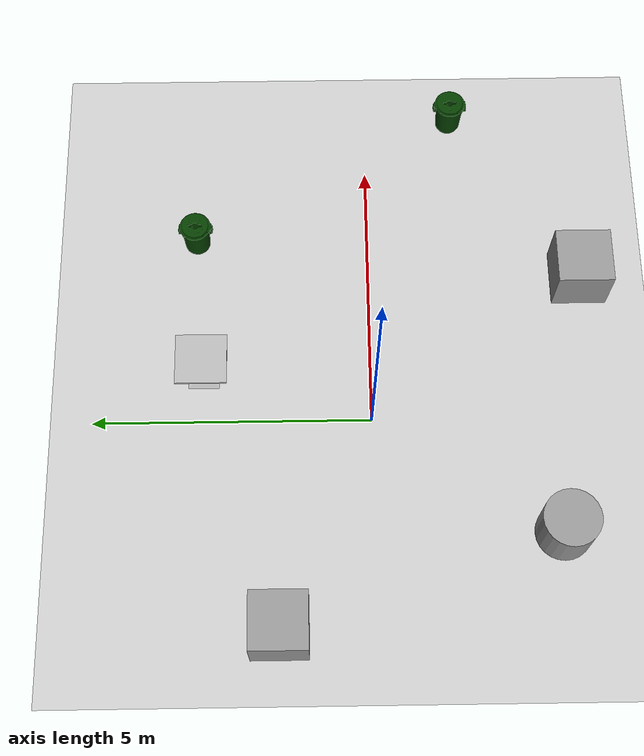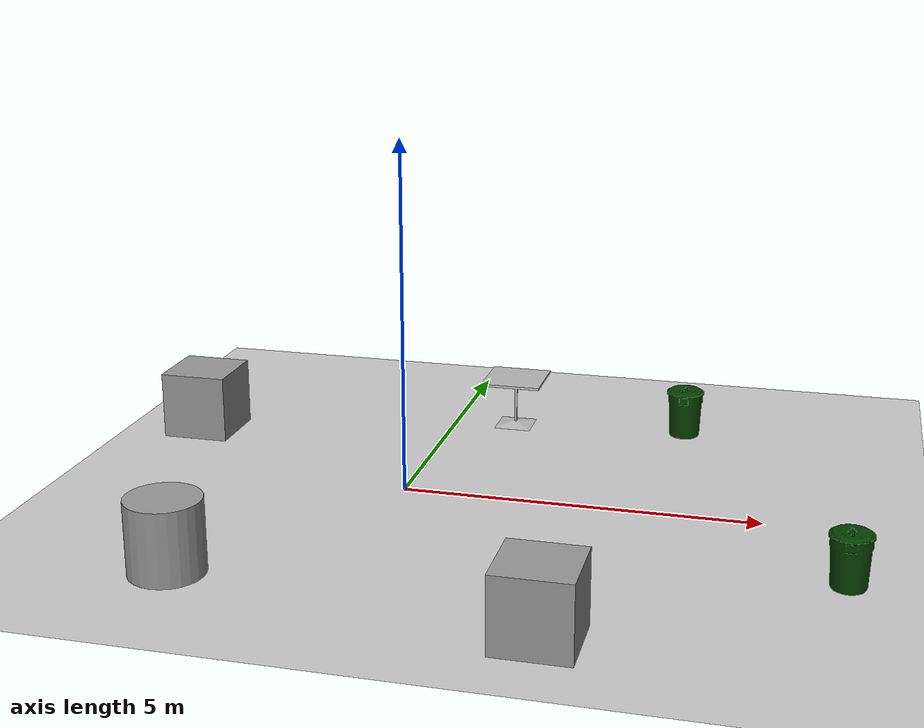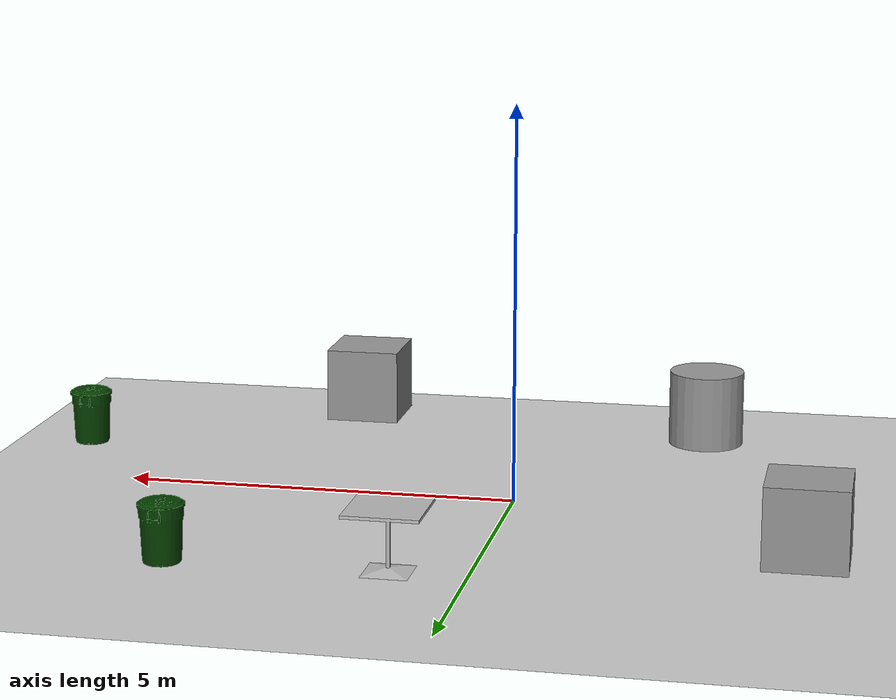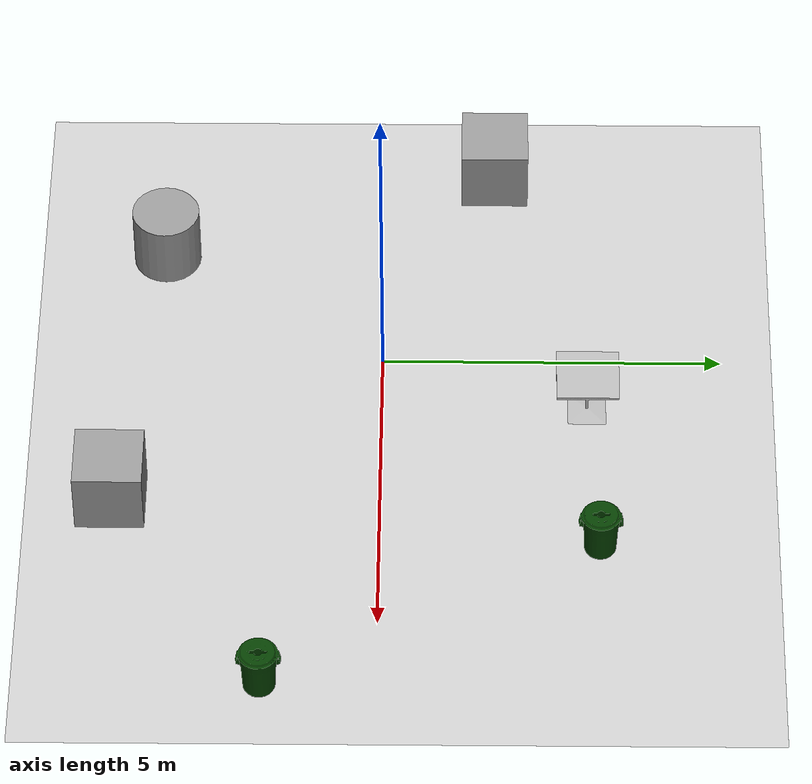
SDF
<sdf version="1.7">
 <world name="default">
  <light name="sun" type="directional">
   <pose>0 0 10 0 -0 0</pose>
   <diffuse>0.8 0.8 0.8 1</diffuse>
   <specular>0.2 0.2 0.2 1</specular>
   <attenuation>
    <range>1000</range>
    <constant>0.9</constant>
    <linear>0.01</linear>
    <quadratic>0.001</quadratic>
   </attenuation>
   <direction>-0.5 0.1 -0.9</direction>
   <spot><inner_angle>0</inner_angle><outer_angle>0</outer_angle><falloff>0</falloff></spot>
  </light>
  <model name="ground_plane">
   <static>1</static>
   <link name="link">
    <collision name="collision">
     <geometry><plane><normal>0 0 1</normal><size>100 100</size></plane></geometry>
     <surface>
      <contact><collide_bitmask>65535</collide_bitmask></contact>
      <friction><ode><mu>100</mu><mu2>50</mu2></ode></friction>
     </surface>
    </collision>
    <visual name="visual">
     <cast_shadows>0</cast_shadows>
     <geometry><plane><normal>0 0 1</normal><size>100 100</size></plane></geometry>
     <material>
      <script><uri>file://media/materials/scripts/gazebo.material</uri><name>Gazebo/Grey</name></script>
     </material>
    </visual>
   </link>
  </model>
  <gravity>0 0 -9.8</gravity>
  <magnetic_field>6e-06 2.3e-05 -4.2e-05</magnetic_field>
  <atmosphere type="adiabatic"/>
  <physics type="ode">
   <max_step_size>0.001</max_step_size>
   <real_time_factor>1</real_time_factor>
   <real_time_update_rate>1000</real_time_update_rate>
  </physics>
  <scene><ambient>0.4 0.4 0.4 1</ambient><background>0.7 0.7 0.7 1</background><shadows>1</shadows></scene>
  <spherical_coordinates>
   <surface_model>EARTH_WGS84</surface_model>
   <latitude_deg>0</latitude_deg>
   <longitude_deg>0</longitude_deg>
   <elevation>0</elevation>
   <heading_deg>0</heading_deg>
  </spherical_coordinates>
  <model name="cafe_table">
   <static>1</static>
   <link name="link">
    <collision name="surface">
     <pose>0 0 0.755 0 -0 0</pose>
     <geometry><box><size>0.913 0.913 0.04</size></box></geometry>
    </collision>
    <collision name="column">
     <pose>0 0 0.37 0 -0 0</pose>
     <geometry><box><size>0.042 0.042 0.74</size></box></geometry>
    </collision>
    <collision name="base">
     <pose>0 0 0.02 0 -0 0</pose>
     <geometry><box><size>0.56 0.56 0.04</size></box></geometry>
    </collision>
    <visual name="visual">
     <geometry><mesh><uri>model://cafe_table/meshes/cafe_table.dae</uri></mesh></geometry>
    </visual>
   </link>
   <pose>0.928571 3.01216 0 0 -0 0</pose>
  </model>
  <model name="unit_box">
   <pose>2.75431 -3.89171 0.499995 0 1e-05 0</pose>
   <link name="link">
    <inertial>
     <mass>1</mass>
     <inertia>
      <ixx>0.166667</ixx>
      <ixy>0</ixy>
      <ixz>0</ixz>
      <iyy>0.166667</iyy>
      <iyz>0</iyz>
      <izz>0.166667</izz>
     </inertia>
    </inertial>
    <collision name="collision"><geometry><box><size>1 1 1</size></box></geometry></collision>
    <visual name="visual">
     <geometry><box><size>1 1 1</size></box></geometry>
     <material>
      <script><name>Gazebo/Grey</name><uri>file://media/materials/scripts/gazebo.material</uri></script>
     </material>
    </visual>
   </link>
  </model>
  <model name="unit_box_0">
   <pose>-3.72752 1.64882 0.499995 -1e-05 -0 -0</pose>
   <link name="link">
    <inertial>
     <mass>1</mass>
     <inertia>
      <ixx>0.166667</ixx>
      <ixy>0</ixy>
      <ixz>0</ixz>
      <iyy>0.166667</iyy>
      <iyz>0</iyz>
      <izz>0.166667</izz>
     </inertia>
    </inertial>
    <collision name="collision"><geometry><box><size>1 1 1</size></box></geometry></collision>
    <visual name="visual">
     <geometry><box><size>1 1 1</size></box></geometry>
     <material>
      <script><name>Gazebo/Grey</name><uri>file://media/materials/scripts/gazebo.material</uri></script>
     </material>
    </visual>
   </link>
  </model>
  <model name="unit_cylinder">
   <pose>-2.09564 -3.27488 0.499992 -3e-06 4e-06 0</pose>
   <link name="link">
    <inertial>
     <mass>1</mass>
     <inertia><ixx>0.145833</ixx><ixy>0</ixy><ixz>0</ixz><iyy>0.145833</iyy><iyz>0</iyz><izz>0.125</izz></inertia>
    </inertial>
    <collision name="collision">
     <geometry><cylinder><radius>0.5</radius><length>1</length></cylinder></geometry>
    </collision>
    <visual name="visual">
     <geometry><cylinder><radius>0.5</radius><length>1</length></cylinder></geometry>
     <material>
      <script><name>Gazebo/Grey</name><uri>file://media/materials/scripts/gazebo.material</uri></script>
     </material>
    </visual>
   </link>
  </model>
  <model name="first_2015_trash_can">
   <link name="link">
    <inertial>
     <pose>0 0 0.3683 0 -0 0</pose>
     <mass>4.83076</mass>
     <inertia>
      <ixx>0.281534</ixx>
      <ixy>0</ixy>
      <ixz>0</ixz>
      <iyy>0.281534</iyy>
      <iyz>0</iyz>
      <izz>0.126223</izz>
     </inertia>
    </inertial>
    <visual name="visual">
     <geometry><mesh><uri>model://first_2015_trash_can/meshes/trash_can.dae</uri></mesh></geometry>
    </visual>
    <collision name="collision">
     <geometry><mesh><uri>model://first_2015_trash_can/meshes/trash_can.dae</uri></mesh></geometry>
    </collision>
   </link>
   <pose>3.57565 3.17756 -2e-06 -5e-06 1.1e-05 -0.000468</pose>
  </model>
  <model name="first_2015_trash_can_0">
   <link name="link">
    <inertial>
     <pose>0 0 0.3683 0 -0 0</pose>
     <mass>4.83076</mass>
     <inertia>
      <ixx>0.281534</ixx>
      <ixy>0</ixy>
      <ixz>0</ixz>
      <iyy>0.281534</iyy>
      <iyz>0</iyz>
      <izz>0.126223</izz>
     </inertia>
    </inertial>
    <visual name="visual">
     <geometry><mesh><uri>model://first_2015_trash_can/meshes/trash_can.dae</uri></mesh></geometry>
    </visual>
    <collision name="collision">
     <geometry><mesh><uri>model://first_2015_trash_can/meshes/trash_can.dae</uri></mesh></geometry>
    </collision>
   </link>
   <pose>6.13875 -1.64032 -2e-06 -1.4e-05 1e-05 -9e-05</pose>
  </model>
 </world>
</sdf>
